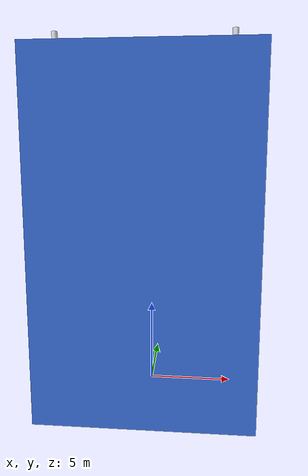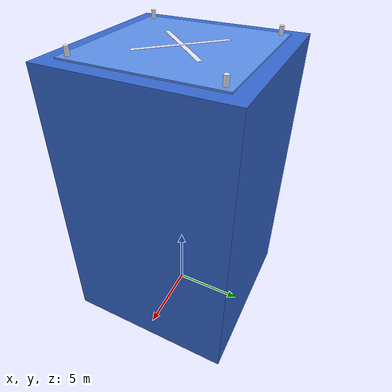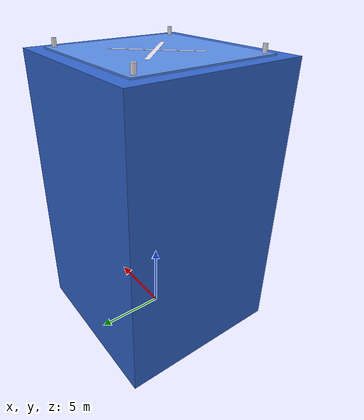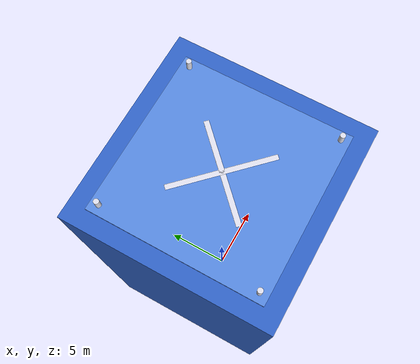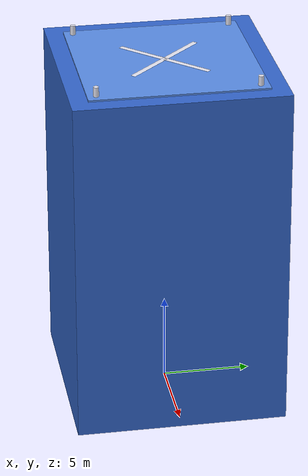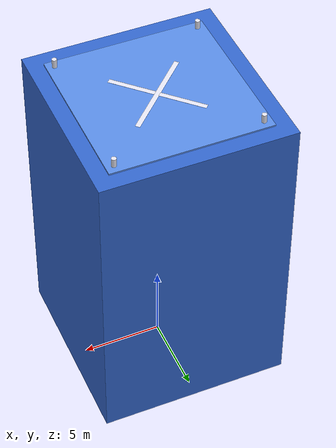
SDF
<?xml version="1.0" encoding="UTF-8"?>
<sdf version="1.9">
  <model name="storage_building">
    <static>true</static>

    <!-- Main building body — blue, 12×12 m, 20 m tall -->
    <link name="body">
      <pose>0 0 10 0 0 0</pose>
      <collision name="collision">
        <geometry><box><size>12 12 20</size></box></geometry>
      </collision>
      <visual name="visual">
        <geometry><box><size>12 12 20</size></box></geometry>
        <material>
          <ambient>0.15 0.30 0.65 1</ambient>
          <diffuse>0.20 0.40 0.80 1</diffuse>
          <specular>0.3 0.3 0.4 1</specular>
        </material>
      </visual>
    </link>

    <!-- Rooftop landing pad — lighter blue, 10×10 m -->
    <link name="roof_pad">
      <pose>0 0 20.05 0 0 0</pose>
      <collision name="collision">
        <geometry><box><size>10 10 0.1</size></box></geometry>
      </collision>
      <visual name="visual">
        <geometry><box><size>10 10 0.1</size></box></geometry>
        <material>
          <ambient>0.30 0.50 0.85 1</ambient>
          <diffuse>0.35 0.55 0.90 1</diffuse>
          <specular>0.4 0.4 0.5 1</specular>
        </material>
      </visual>
    </link>

    <!-- Landing cross — white X stripe 1 -->
    <link name="cross1">
      <pose>0 0 20.11 0 0 0.7854</pose>
      <visual name="visual">
        <geometry><box><size>6.0 0.3 0.002</size></box></geometry>
        <material>
          <ambient>0.9 0.9 0.95 1</ambient>
          <diffuse>0.9 0.9 0.95 1</diffuse>
        </material>
      </visual>
    </link>

    <!-- Landing cross — white X stripe 2 -->
    <link name="cross2">
      <pose>0 0 20.11 0 0 -0.7854</pose>
      <visual name="visual">
        <geometry><box><size>6.0 0.3 0.002</size></box></geometry>
        <material>
          <ambient>0.9 0.9 0.95 1</ambient>
          <diffuse>0.9 0.9 0.95 1</diffuse>
        </material>
      </visual>
    </link>

    <!-- Corner beacon 1 — small white post -->
    <link name="beacon1">
      <pose>4.5 4.5 20.35 0 0 0</pose>
      <visual name="visual">
        <geometry><cylinder><radius>0.15</radius><length>0.6</length></cylinder></geometry>
        <material>
          <ambient>0.9 0.9 0.95 1</ambient>
          <diffuse>0.9 0.9 0.95 1</diffuse>
        </material>
      </visual>
    </link>

    <!-- Corner beacon 2 -->
    <link name="beacon2">
      <pose>-4.5 4.5 20.35 0 0 0</pose>
      <visual name="visual">
        <geometry><cylinder><radius>0.15</radius><length>0.6</length></cylinder></geometry>
        <material>
          <ambient>0.9 0.9 0.95 1</ambient>
          <diffuse>0.9 0.9 0.95 1</diffuse>
        </material>
      </visual>
    </link>

    <!-- Corner beacon 3 -->
    <link name="beacon3">
      <pose>4.5 -4.5 20.35 0 0 0</pose>
      <visual name="visual">
        <geometry><cylinder><radius>0.15</radius><length>0.6</length></cylinder></geometry>
        <material>
          <ambient>0.9 0.9 0.95 1</ambient>
          <diffuse>0.9 0.9 0.95 1</diffuse>
        </material>
      </visual>
    </link>

    <!-- Corner beacon 4 -->
    <link name="beacon4">
      <pose>-4.5 -4.5 20.35 0 0 0</pose>
      <visual name="visual">
        <geometry><cylinder><radius>0.15</radius><length>0.6</length></cylinder></geometry>
        <material>
          <ambient>0.9 0.9 0.95 1</ambient>
          <diffuse>0.9 0.9 0.95 1</diffuse>
        </material>
      </visual>
    </link>

  </model>
</sdf>
